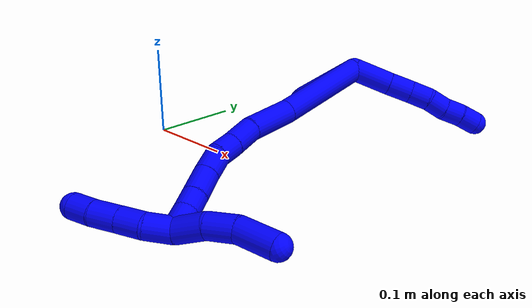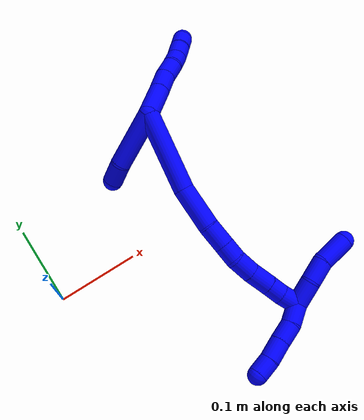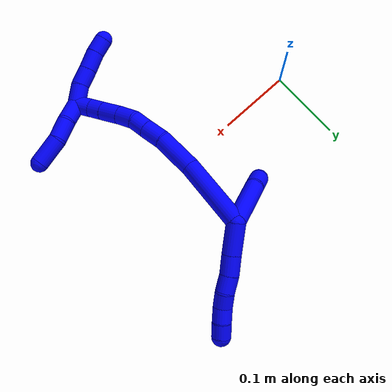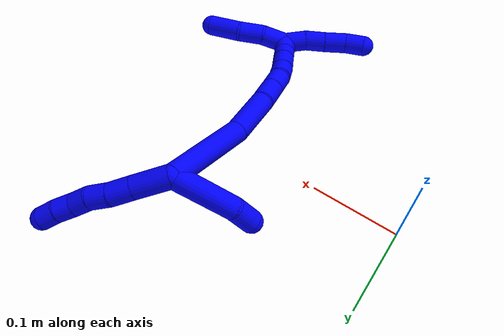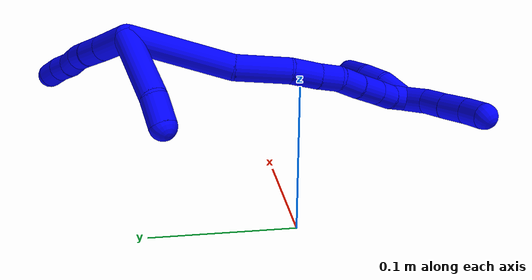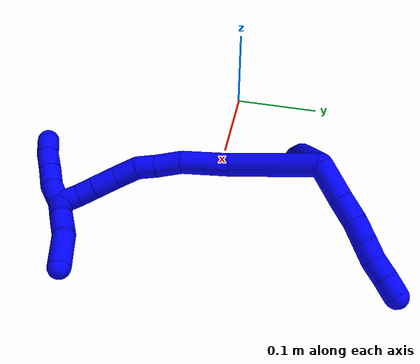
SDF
<sdf version="1.7">
 <world name="default">
  <model name="bin">
   <static>1</static>
   <link name="bottom">
    <collision name="collision-bottom">
     <pose>0 0 -0.01 0 -0 0</pose>
     <geometry><box><size>0.8 0.6 0.02</size></box></geometry>
     <surface>
      <friction><ode><mu>100</mu><mu2>100</mu2></ode></friction>
      <contact><collide_bitmask>65535</collide_bitmask></contact>
     </surface>
    </collision>
   </link>
   <link name="west_wall">
    <collision name="collision-west_wall">
     <pose>-0.41 0 0.1 0 -0 0</pose>
     <geometry><box><size>0.02 0.6 0.2</size></box></geometry>
     <surface>
      <friction><ode><mu>100</mu><mu2>100</mu2></ode></friction>
      <contact><collide_bitmask>65535</collide_bitmask></contact>
     </surface>
    </collision>
   </link>
   <link name="east_wall">
    <collision name="collision-east_wall">
     <pose>0.41 0 0.1 0 -0 0</pose>
     <geometry><box><size>0.02 0.6 0.2</size></box></geometry>
     <surface>
      <friction><ode><mu>100</mu><mu2>100</mu2></ode></friction>
      <contact><collide_bitmask>65535</collide_bitmask></contact>
     </surface>
    </collision>
   </link>
   <link name="south_wall">
    <collision name="collision-south_wall">
     <pose>0 -0.31 0.1 0 -0 0</pose>
     <geometry><box><size>0.8 0.02 0.2</size></box></geometry>
     <surface>
      <friction><ode><mu>100</mu><mu2>100</mu2></ode></friction>
      <contact><collide_bitmask>65535</collide_bitmask></contact>
     </surface>
    </collision>
   </link>
   <link name="north_wall">
    <collision name="collision-north_wall">
     <pose>0 0.31 0.1 0 -0 0</pose>
     <geometry><box><size>0.8 0.02 0.2</size></box></geometry>
     <surface>
      <friction><ode><mu>100</mu><mu2>100</mu2></ode></friction>
      <contact><collide_bitmask>65535</collide_bitmask></contact>
     </surface>
    </collision>
   </link>
  </model>
  <model name="1">
   <static>0</static>
   <link name="1">
    <collision name="collision-cylinder-e_1_2_8">
     <pose>0.013728 0.008758 0.012895 -0.596623 0.722049 -0.231163</pose>
     <geometry><cylinder><radius>0.0125</radius><length>0.041543</length></cylinder></geometry>
     <surface>
      <friction><ode><mu>1.16</mu><mu2>1.16</mu2><slip1>0</slip1><slip2>0</slip2></ode></friction>
      <contact><ode><kp>1e+06</kp><kd>1</kd><max_vel>0</max_vel><min_depth>0.001</min_depth></ode></contact>
     </surface>
    </collision>
    <visual name="visual-cylinder-e_1_2_8">
     <pose>0.013728 0.008758 0.012895 -0.596623 0.722049 -0.231163</pose>
     <geometry><cylinder><radius>0.0125</radius><length>0.041543</length></cylinder></geometry>
     <material><ambient>0 0 1 1</ambient></material>
    </visual>
    <collision name="collision-cylinder-e_2_8_9">
     <pose>0.035744 0.023323 0.033961 -0.617864 0.690821 -0.228682</pose>
     <geometry><cylinder><radius>0.0125</radius><length>0.026012</length></cylinder></geometry>
     <surface>
      <friction><ode><mu>1.16</mu><mu2>1.16</mu2><slip1>0</slip1><slip2>0</slip2></ode></friction>
      <contact><ode><kp>1e+06</kp><kd>1</kd><max_vel>0</max_vel><min_depth>0.001</min_depth></ode></contact>
     </surface>
    </collision>
    <visual name="visual-cylinder-e_2_8_9">
     <pose>0.035744 0.023323 0.033961 -0.617864 0.690821 -0.228682</pose>
     <geometry><cylinder><radius>0.0125</radius><length>0.026012</length></cylinder></geometry>
     <material><ambient>0 0 1 1</ambient></material>
    </visual>
    <collision name="collision-cylinder-e_3_9_10">
     <pose>0.051557 0.03265 0.049611 -0.439895 0.738585 -0.172631</pose>
     <geometry><cylinder><radius>0.0125</radius><length>0.022359</length></cylinder></geometry>
     <surface>
      <friction><ode><mu>1.16</mu><mu2>1.16</mu2><slip1>0</slip1><slip2>0</slip2></ode></friction>
      <contact><ode><kp>1e+06</kp><kd>1</kd><max_vel>0</max_vel><min_depth>0.001</min_depth></ode></contact>
     </surface>
    </collision>
    <visual name="visual-cylinder-e_3_9_10">
     <pose>0.051557 0.03265 0.049611 -0.439895 0.738585 -0.172631</pose>
     <geometry><cylinder><radius>0.0125</radius><length>0.022359</length></cylinder></geometry>
     <material><ambient>0 0 1 1</ambient></material>
    </visual>
    <collision name="collision-cylinder-e_4_10_11">
     <pose>0.066774 0.040418 0.061917 -0.721678 0.874472 -0.349172</pose>
     <geometry><cylinder><radius>0.0125</radius><length>0.020046</length></cylinder></geometry>
     <surface>
      <friction><ode><mu>1.16</mu><mu2>1.16</mu2><slip1>0</slip1><slip2>0</slip2></ode></friction>
      <contact><ode><kp>1e+06</kp><kd>1</kd><max_vel>0</max_vel><min_depth>0.001</min_depth></ode></contact>
     </surface>
    </collision>
    <visual name="visual-cylinder-e_4_10_11">
     <pose>0.066774 0.040418 0.061917 -0.721678 0.874472 -0.349172</pose>
     <geometry><cylinder><radius>0.0125</radius><length>0.020046</length></cylinder></geometry>
     <material><ambient>0 0 1 1</ambient></material>
    </visual>
    <collision name="collision-cylinder-e_5_11_12">
     <pose>0.080775 0.049559 0.072764 -0.682514 0.682811 -0.251057</pose>
     <geometry><cylinder><radius>0.0125</radius><length>0.020005</length></cylinder></geometry>
     <surface>
      <friction><ode><mu>1.16</mu><mu2>1.16</mu2><slip1>0</slip1><slip2>0</slip2></ode></friction>
      <contact><ode><kp>1e+06</kp><kd>1</kd><max_vel>0</max_vel><min_depth>0.001</min_depth></ode></contact>
     </surface>
    </collision>
    <visual name="visual-cylinder-e_5_11_12">
     <pose>0.080775 0.049559 0.072764 -0.682514 0.682811 -0.251057</pose>
     <geometry><cylinder><radius>0.0125</radius><length>0.020005</length></cylinder></geometry>
     <material><ambient>0 0 1 1</ambient></material>
    </visual>
    <collision name="collision-cylinder-e_6_12_6">
     <pose>0.094128 0.059588 0.083726 -0.804596 0.779516 -0.346075</pose>
     <geometry><cylinder><radius>0.0125</radius><length>0.020035</length></cylinder></geometry>
     <surface>
      <friction><ode><mu>1.16</mu><mu2>1.16</mu2><slip1>0</slip1><slip2>0</slip2></ode></friction>
      <contact><ode><kp>1e+06</kp><kd>1</kd><max_vel>0</max_vel><min_depth>0.001</min_depth></ode></contact>
     </surface>
    </collision>
    <visual name="visual-cylinder-e_6_12_6">
     <pose>0.094128 0.059588 0.083726 -0.804596 0.779516 -0.346075</pose>
     <geometry><cylinder><radius>0.0125</radius><length>0.020035</length></cylinder></geometry>
     <material><ambient>0 0 1 1</ambient></material>
    </visual>
    <collision name="collision-cylinder-e_1_2_13">
     <pose>0.003373 0.002211 -0.036047 -3.08033 0.093113 -1.97802</pose>
     <geometry><cylinder><radius>0.0125</radius><length>0.072544</length></cylinder></geometry>
     <surface>
      <friction><ode><mu>1.16</mu><mu2>1.16</mu2><slip1>0</slip1><slip2>0</slip2></ode></friction>
      <contact><ode><kp>1e+06</kp><kd>1</kd><max_vel>0</max_vel><min_depth>0.001</min_depth></ode></contact>
     </surface>
    </collision>
    <visual name="visual-cylinder-e_1_2_13">
     <pose>0.003373 0.002211 -0.036047 -3.08033 0.093113 -1.97802</pose>
     <geometry><cylinder><radius>0.0125</radius><length>0.072544</length></cylinder></geometry>
     <material><ambient>0 0 1 1</ambient></material>
    </visual>
    <collision name="collision-cylinder-e_2_13_5">
     <pose>0.01133 0.005926 -0.084946 -3.02513 0.340565 -2.48782</pose>
     <geometry><cylinder><radius>0.0125</radius><length>0.027456</length></cylinder></geometry>
     <surface>
      <friction><ode><mu>1.16</mu><mu2>1.16</mu2><slip1>0</slip1><slip2>0</slip2></ode></friction>
      <contact><ode><kp>1e+06</kp><kd>1</kd><max_vel>0</max_vel><min_depth>0.001</min_depth></ode></contact>
     </surface>
    </collision>
    <visual name="visual-cylinder-e_2_13_5">
     <pose>0.01133 0.005926 -0.084946 -3.02513 0.340565 -2.48782</pose>
     <geometry><cylinder><radius>0.0125</radius><length>0.027456</length></cylinder></geometry>
     <material><ambient>0 0 1 1</ambient></material>
    </visual>
    <collision name="collision-cylinder-e_1_2_14">
     <pose>0.011297 -0.039592 -0.028262 2.19075 0.228188 0.438043</pose>
     <geometry><cylinder><radius>0.0125</radius><length>0.099877</length></cylinder></geometry>
     <surface>
      <friction><ode><mu>1.16</mu><mu2>1.16</mu2><slip1>0</slip1><slip2>0</slip2></ode></friction>
      <contact><ode><kp>1e+06</kp><kd>1</kd><max_vel>0</max_vel><min_depth>0.001</min_depth></ode></contact>
     </surface>
    </collision>
    <visual name="visual-cylinder-e_1_2_14">
     <pose>0.011297 -0.039592 -0.028262 2.19075 0.228188 0.438043</pose>
     <geometry><cylinder><radius>0.0125</radius><length>0.099877</length></cylinder></geometry>
     <material><ambient>0 0 1 1</ambient></material>
    </visual>
    <collision name="collision-cylinder-e_2_14_15">
     <pose>0.026235 -0.103539 -0.06694 1.97492 0.136614 0.206592</pose>
     <geometry><cylinder><radius>0.0125</radius><length>0.053476</length></cylinder></geometry>
     <surface>
      <friction><ode><mu>1.16</mu><mu2>1.16</mu2><slip1>0</slip1><slip2>0</slip2></ode></friction>
      <contact><ode><kp>1e+06</kp><kd>1</kd><max_vel>0</max_vel><min_depth>0.001</min_depth></ode></contact>
     </surface>
    </collision>
    <visual name="visual-cylinder-e_2_14_15">
     <pose>0.026235 -0.103539 -0.06694 1.97492 0.136614 0.206592</pose>
     <geometry><cylinder><radius>0.0125</radius><length>0.053476</length></cylinder></geometry>
     <material><ambient>0 0 1 1</ambient></material>
    </visual>
    <collision name="collision-cylinder-e_3_15_16">
     <pose>0.034658 -0.140536 -0.082424 1.9521 0.337605 0.493603</pose>
     <geometry><cylinder><radius>0.0125</radius><length>0.028871</length></cylinder></geometry>
     <surface>
      <friction><ode><mu>1.16</mu><mu2>1.16</mu2><slip1>0</slip1><slip2>0</slip2></ode></friction>
      <contact><ode><kp>1e+06</kp><kd>1</kd><max_vel>0</max_vel><min_depth>0.001</min_depth></ode></contact>
     </surface>
    </collision>
    <visual name="visual-cylinder-e_3_15_16">
     <pose>0.034658 -0.140536 -0.082424 1.9521 0.337605 0.493603</pose>
     <geometry><cylinder><radius>0.0125</radius><length>0.028871</length></cylinder></geometry>
     <material><ambient>0 0 1 1</ambient></material>
    </visual>
    <collision name="collision-cylinder-e_4_16_17">
     <pose>0.042314 -0.162908 -0.091111 1.92685 0.270188 0.38626</pose>
     <geometry><cylinder><radius>0.0125</radius><length>0.021541</length></cylinder></geometry>
     <surface>
      <friction><ode><mu>1.16</mu><mu2>1.16</mu2><slip1>0</slip1><slip2>0</slip2></ode></friction>
      <contact><ode><kp>1e+06</kp><kd>1</kd><max_vel>0</max_vel><min_depth>0.001</min_depth></ode></contact>
     </surface>
    </collision>
    <visual name="visual-cylinder-e_4_16_17">
     <pose>0.042314 -0.162908 -0.091111 1.92685 0.270188 0.38626</pose>
     <geometry><cylinder><radius>0.0125</radius><length>0.021541</length></cylinder></geometry>
     <material><ambient>0 0 1 1</ambient></material>
    </visual>
    <collision name="collision-cylinder-e_5_17_18">
     <pose>0.05213 -0.182556 -0.097745 1.86595 0.589925 0.778076</pose>
     <geometry><cylinder><radius>0.0125</radius><length>0.024954</length></cylinder></geometry>
     <surface>
      <friction><ode><mu>1.16</mu><mu2>1.16</mu2><slip1>0</slip1><slip2>0</slip2></ode></friction>
      <contact><ode><kp>1e+06</kp><kd>1</kd><max_vel>0</max_vel><min_depth>0.001</min_depth></ode></contact>
     </surface>
    </collision>
    <visual name="visual-cylinder-e_5_17_18">
     <pose>0.05213 -0.182556 -0.097745 1.86595 0.589925 0.778076</pose>
     <geometry><cylinder><radius>0.0125</radius><length>0.024954</length></cylinder></geometry>
     <material><ambient>0 0 1 1</ambient></material>
    </visual>
    <collision name="collision-cylinder-e_6_18_19">
     <pose>0.066859 -0.203681 -0.102839 1.75418 0.599526 0.711699</pose>
     <geometry><cylinder><radius>0.0125</radius><length>0.027607</length></cylinder></geometry>
     <surface>
      <friction><ode><mu>1.16</mu><mu2>1.16</mu2><slip1>0</slip1><slip2>0</slip2></ode></friction>
      <contact><ode><kp>1e+06</kp><kd>1</kd><max_vel>0</max_vel><min_depth>0.001</min_depth></ode></contact>
     </surface>
    </collision>
    <visual name="visual-cylinder-e_6_18_19">
     <pose>0.066859 -0.203681 -0.102839 1.75418 0.599526 0.711699</pose>
     <geometry><cylinder><radius>0.0125</radius><length>0.027607</length></cylinder></geometry>
     <material><ambient>0 0 1 1</ambient></material>
    </visual>
    <collision name="collision-cylinder-e_7_19_20">
     <pose>0.080375 -0.222984 -0.10665 1.78162 0.605057 0.736706</pose>
     <geometry><cylinder><radius>0.0125</radius><length>0.020136</length></cylinder></geometry>
     <surface>
      <friction><ode><mu>1.16</mu><mu2>1.16</mu2><slip1>0</slip1><slip2>0</slip2></ode></friction>
      <contact><ode><kp>1e+06</kp><kd>1</kd><max_vel>0</max_vel><min_depth>0.001</min_depth></ode></contact>
     </surface>
    </collision>
    <visual name="visual-cylinder-e_7_19_20">
     <pose>0.080375 -0.222984 -0.10665 1.78162 0.605057 0.736706</pose>
     <geometry><cylinder><radius>0.0125</radius><length>0.020136</length></cylinder></geometry>
     <material><ambient>0 0 1 1</ambient></material>
    </visual>
    <collision name="collision-cylinder-e_8_20_1">
     <pose>0.091926 -0.241286 -0.109046 1.63562 0.517683 0.550703</pose>
     <geometry><cylinder><radius>0.0125</radius><length>0.023537</length></cylinder></geometry>
     <surface>
      <friction><ode><mu>1.16</mu><mu2>1.16</mu2><slip1>0</slip1><slip2>0</slip2></ode></friction>
      <contact><ode><kp>1e+06</kp><kd>1</kd><max_vel>0</max_vel><min_depth>0.001</min_depth></ode></contact>
     </surface>
    </collision>
    <visual name="visual-cylinder-e_8_20_1">
     <pose>0.091926 -0.241286 -0.109046 1.63562 0.517683 0.550703</pose>
     <geometry><cylinder><radius>0.0125</radius><length>0.023537</length></cylinder></geometry>
     <material><ambient>0 0 1 1</ambient></material>
    </visual>
    <collision name="collision-cylinder-e_1_1_21">
     <pose>0.091453 -0.256403 -0.120633 2.71902 -0.483973 -1.71075</pose>
     <geometry><cylinder><radius>0.0125</radius><length>0.027065</length></cylinder></geometry>
     <surface>
      <friction><ode><mu>1.16</mu><mu2>1.16</mu2><slip1>0</slip1><slip2>0</slip2></ode></friction>
      <contact><ode><kp>1e+06</kp><kd>1</kd><max_vel>0</max_vel><min_depth>0.001</min_depth></ode></contact>
     </surface>
    </collision>
    <visual name="visual-cylinder-e_1_1_21">
     <pose>0.091453 -0.256403 -0.120633 2.71902 -0.483973 -1.71075</pose>
     <geometry><cylinder><radius>0.0125</radius><length>0.027065</length></cylinder></geometry>
     <material><ambient>0 0 1 1</ambient></material>
    </visual>
    <collision name="collision-cylinder-e_2_21_22">
     <pose>0.078914 -0.262734 -0.14201 3.00671 -0.534367 -2.65774</pose>
     <geometry><cylinder><radius>0.0125</radius><length>0.024514</length></cylinder></geometry>
     <surface>
      <friction><ode><mu>1.16</mu><mu2>1.16</mu2><slip1>0</slip1><slip2>0</slip2></ode></friction>
      <contact><ode><kp>1e+06</kp><kd>1</kd><max_vel>0</max_vel><min_depth>0.001</min_depth></ode></contact>
     </surface>
    </collision>
    <visual name="visual-cylinder-e_2_21_22">
     <pose>0.078914 -0.262734 -0.14201 3.00671 -0.534367 -2.65774</pose>
     <geometry><cylinder><radius>0.0125</radius><length>0.024514</length></cylinder></geometry>
     <material><ambient>0 0 1 1</ambient></material>
    </visual>
    <collision name="collision-cylinder-e_3_22_23">
     <pose>0.065945 -0.266202 -0.16356 2.95902 -0.537534 -2.49986</pose>
     <geometry><cylinder><radius>0.0125</radius><length>0.026275</length></cylinder></geometry>
     <surface>
      <friction><ode><mu>1.16</mu><mu2>1.16</mu2><slip1>0</slip1><slip2>0</slip2></ode></friction>
      <contact><ode><kp>1e+06</kp><kd>1</kd><max_vel>0</max_vel><min_depth>0.001</min_depth></ode></contact>
     </surface>
    </collision>
    <visual name="visual-cylinder-e_3_22_23">
     <pose>0.065945 -0.266202 -0.16356 2.95902 -0.537534 -2.49986</pose>
     <geometry><cylinder><radius>0.0125</radius><length>0.026275</length></cylinder></geometry>
     <material><ambient>0 0 1 1</ambient></material>
    </visual>
    <collision name="collision-cylinder-e_4_23_4">
     <pose>0.053225 -0.268399 -0.183967 3.12567 -0.57191 -3.08744</pose>
     <geometry><cylinder><radius>0.0125</radius><length>0.022146</length></cylinder></geometry>
     <surface>
      <friction><ode><mu>1.16</mu><mu2>1.16</mu2><slip1>0</slip1><slip2>0</slip2></ode></friction>
      <contact><ode><kp>1e+06</kp><kd>1</kd><max_vel>0</max_vel><min_depth>0.001</min_depth></ode></contact>
     </surface>
    </collision>
    <visual name="visual-cylinder-e_4_23_4">
     <pose>0.053225 -0.268399 -0.183967 3.12567 -0.57191 -3.08744</pose>
     <geometry><cylinder><radius>0.0125</radius><length>0.022146</length></cylinder></geometry>
     <material><ambient>0 0 1 1</ambient></material>
    </visual>
    <collision name="collision-cylinder-e_1_1_24">
     <pose>0.100212 -0.250635 -0.094115 -0.054848 0.156387 -0.004299</pose>
     <geometry><cylinder><radius>0.0125</radius><length>0.03162</length></cylinder></geometry>
     <surface>
      <friction><ode><mu>1.16</mu><mu2>1.16</mu2><slip1>0</slip1><slip2>0</slip2></ode></friction>
      <contact><ode><kp>1e+06</kp><kd>1</kd><max_vel>0</max_vel><min_depth>0.001</min_depth></ode></contact>
     </surface>
    </collision>
    <visual name="visual-cylinder-e_1_1_24">
     <pose>0.100212 -0.250635 -0.094115 -0.054848 0.156387 -0.004299</pose>
     <geometry><cylinder><radius>0.0125</radius><length>0.03162</length></cylinder></geometry>
     <material><ambient>0 0 1 1</ambient></material>
    </visual>
    <collision name="collision-cylinder-e_2_24_25">
     <pose>0.108447 -0.248068 -0.065423 -0.129921 0.412006 -0.027186</pose>
     <geometry><cylinder><radius>0.0125</radius><length>0.028831</length></cylinder></geometry>
     <surface>
      <friction><ode><mu>1.16</mu><mu2>1.16</mu2><slip1>0</slip1><slip2>0</slip2></ode></friction>
      <contact><ode><kp>1e+06</kp><kd>1</kd><max_vel>0</max_vel><min_depth>0.001</min_depth></ode></contact>
     </surface>
    </collision>
    <visual name="visual-cylinder-e_2_24_25">
     <pose>0.108447 -0.248068 -0.065423 -0.129921 0.412006 -0.027186</pose>
     <geometry><cylinder><radius>0.0125</radius><length>0.028831</length></cylinder></geometry>
     <material><ambient>0 0 1 1</ambient></material>
    </visual>
    <collision name="collision-cylinder-e_3_25_3">
     <pose>0.125781 -0.247923 -0.03636 0.097821 0.624482 0.031599</pose>
     <geometry><cylinder><radius>0.0125</radius><length>0.039549</length></cylinder></geometry>
     <surface>
      <friction><ode><mu>1.16</mu><mu2>1.16</mu2><slip1>0</slip1><slip2>0</slip2></ode></friction>
      <contact><ode><kp>1e+06</kp><kd>1</kd><max_vel>0</max_vel><min_depth>0.001</min_depth></ode></contact>
     </surface>
    </collision>
    <visual name="visual-cylinder-e_3_25_3">
     <pose>0.125781 -0.247923 -0.03636 0.097821 0.624482 0.031599</pose>
     <geometry><cylinder><radius>0.0125</radius><length>0.039549</length></cylinder></geometry>
     <material><ambient>0 0 1 1</ambient></material>
    </visual>
    <collision name="collision-sphere-3">
     <pose>0.137343 -0.24949 -0.020394 0 -0 0</pose>
     <geometry><sphere><radius>0.0125</radius></sphere></geometry>
     <surface>
      <friction><ode><mu>1.16</mu><mu2>1.16</mu2><slip1>0</slip1><slip2>0</slip2></ode></friction>
      <contact><ode><kp>1e+06</kp><kd>1</kd><max_vel>0</max_vel><min_depth>0.001</min_depth></ode></contact>
     </surface>
    </collision>
    <visual name="visual-sphere-3">
     <pose>0.137343 -0.24949 -0.020394 0 -0 0</pose>
     <geometry><sphere><radius>0.0125</radius></sphere></geometry>
     <material><ambient>0 0 1 1</ambient></material>
    </visual>
    <collision name="collision-sphere-25">
     <pose>0.11422 -0.246356 -0.052325 0 -0 0</pose>
     <geometry><sphere><radius>0.0125</radius></sphere></geometry>
     <surface>
      <friction><ode><mu>1.16</mu><mu2>1.16</mu2><slip1>0</slip1><slip2>0</slip2></ode></friction>
      <contact><ode><kp>1e+06</kp><kd>1</kd><max_vel>0</max_vel><min_depth>0.001</min_depth></ode></contact>
     </surface>
    </collision>
    <visual name="visual-sphere-25">
     <pose>0.11422 -0.246356 -0.052325 0 -0 0</pose>
     <geometry><sphere><radius>0.0125</radius></sphere></geometry>
     <material><ambient>0 0 1 1</ambient></material>
    </visual>
    <collision name="collision-sphere-24">
     <pose>0.102674 -0.249779 -0.078521 0 -0 0</pose>
     <geometry><sphere><radius>0.0125</radius></sphere></geometry>
     <surface>
      <friction><ode><mu>1.16</mu><mu2>1.16</mu2><slip1>0</slip1><slip2>0</slip2></ode></friction>
      <contact><ode><kp>1e+06</kp><kd>1</kd><max_vel>0</max_vel><min_depth>0.001</min_depth></ode></contact>
     </surface>
    </collision>
    <visual name="visual-sphere-24">
     <pose>0.102674 -0.249779 -0.078521 0 -0 0</pose>
     <geometry><sphere><radius>0.0125</radius></sphere></geometry>
     <material><ambient>0 0 1 1</ambient></material>
    </visual>
    <collision name="collision-sphere-4">
     <pose>0.047232 -0.268547 -0.193277 0 -0 0</pose>
     <geometry><sphere><radius>0.0125</radius></sphere></geometry>
     <surface>
      <friction><ode><mu>1.16</mu><mu2>1.16</mu2><slip1>0</slip1><slip2>0</slip2></ode></friction>
      <contact><ode><kp>1e+06</kp><kd>1</kd><max_vel>0</max_vel><min_depth>0.001</min_depth></ode></contact>
     </surface>
    </collision>
    <visual name="visual-sphere-4">
     <pose>0.047232 -0.268547 -0.193277 0 -0 0</pose>
     <geometry><sphere><radius>0.0125</radius></sphere></geometry>
     <material><ambient>0 0 1 1</ambient></material>
    </visual>
    <collision name="collision-sphere-23">
     <pose>0.059218 -0.26825 -0.174657 0 -0 0</pose>
     <geometry><sphere><radius>0.0125</radius></sphere></geometry>
     <surface>
      <friction><ode><mu>1.16</mu><mu2>1.16</mu2><slip1>0</slip1><slip2>0</slip2></ode></friction>
      <contact><ode><kp>1e+06</kp><kd>1</kd><max_vel>0</max_vel><min_depth>0.001</min_depth></ode></contact>
     </surface>
    </collision>
    <visual name="visual-sphere-23">
     <pose>0.059218 -0.26825 -0.174657 0 -0 0</pose>
     <geometry><sphere><radius>0.0125</radius></sphere></geometry>
     <material><ambient>0 0 1 1</ambient></material>
    </visual>
    <collision name="collision-sphere-22">
     <pose>0.072671 -0.264153 -0.152462 0 -0 0</pose>
     <geometry><sphere><radius>0.0125</radius></sphere></geometry>
     <surface>
      <friction><ode><mu>1.16</mu><mu2>1.16</mu2><slip1>0</slip1><slip2>0</slip2></ode></friction>
      <contact><ode><kp>1e+06</kp><kd>1</kd><max_vel>0</max_vel><min_depth>0.001</min_depth></ode></contact>
     </surface>
    </collision>
    <visual name="visual-sphere-22">
     <pose>0.072671 -0.264153 -0.152462 0 -0 0</pose>
     <geometry><sphere><radius>0.0125</radius></sphere></geometry>
     <material><ambient>0 0 1 1</ambient></material>
    </visual>
    <collision name="collision-sphere-21">
     <pose>0.085156 -0.261316 -0.131558 0 -0 0</pose>
     <geometry><sphere><radius>0.0125</radius></sphere></geometry>
     <surface>
      <friction><ode><mu>1.16</mu><mu2>1.16</mu2><slip1>0</slip1><slip2>0</slip2></ode></friction>
      <contact><ode><kp>1e+06</kp><kd>1</kd><max_vel>0</max_vel><min_depth>0.001</min_depth></ode></contact>
     </surface>
    </collision>
    <visual name="visual-sphere-21">
     <pose>0.085156 -0.261316 -0.131558 0 -0 0</pose>
     <geometry><sphere><radius>0.0125</radius></sphere></geometry>
     <material><ambient>0 0 1 1</ambient></material>
    </visual>
    <collision name="collision-sphere-1">
     <pose>0.09775 -0.251491 -0.109708 0 -0 0</pose>
     <geometry><sphere><radius>0.0125</radius></sphere></geometry>
     <surface>
      <friction><ode><mu>1.16</mu><mu2>1.16</mu2><slip1>0</slip1><slip2>0</slip2></ode></friction>
      <contact><ode><kp>1e+06</kp><kd>1</kd><max_vel>0</max_vel><min_depth>0.001</min_depth></ode></contact>
     </surface>
    </collision>
    <visual name="visual-sphere-1">
     <pose>0.09775 -0.251491 -0.109708 0 -0 0</pose>
     <geometry><sphere><radius>0.0125</radius></sphere></geometry>
     <material><ambient>0 0 1 1</ambient></material>
    </visual>
    <collision name="collision-sphere-12">
     <pose>0.087086 0.054454 0.078786 0 -0 0</pose>
     <geometry><sphere><radius>0.0125</radius></sphere></geometry>
     <surface>
      <friction><ode><mu>1.16</mu><mu2>1.16</mu2><slip1>0</slip1><slip2>0</slip2></ode></friction>
      <contact><ode><kp>1e+06</kp><kd>1</kd><max_vel>0</max_vel><min_depth>0.001</min_depth></ode></contact>
     </surface>
    </collision>
    <visual name="visual-sphere-12">
     <pose>0.087086 0.054454 0.078786 0 -0 0</pose>
     <geometry><sphere><radius>0.0125</radius></sphere></geometry>
     <material><ambient>0 0 1 1</ambient></material>
    </visual>
    <collision name="collision-sphere-11">
     <pose>0.074463 0.044665 0.066743 0 -0 0</pose>
     <geometry><sphere><radius>0.0125</radius></sphere></geometry>
     <surface>
      <friction><ode><mu>1.16</mu><mu2>1.16</mu2><slip1>0</slip1><slip2>0</slip2></ode></friction>
      <contact><ode><kp>1e+06</kp><kd>1</kd><max_vel>0</max_vel><min_depth>0.001</min_depth></ode></contact>
     </surface>
    </collision>
    <visual name="visual-sphere-11">
     <pose>0.074463 0.044665 0.066743 0 -0 0</pose>
     <geometry><sphere><radius>0.0125</radius></sphere></geometry>
     <material><ambient>0 0 1 1</ambient></material>
    </visual>
    <collision name="collision-sphere-10">
     <pose>0.059084 0.036171 0.057091 0 -0 0</pose>
     <geometry><sphere><radius>0.0125</radius></sphere></geometry>
     <surface>
      <friction><ode><mu>1.16</mu><mu2>1.16</mu2><slip1>0</slip1><slip2>0</slip2></ode></friction>
      <contact><ode><kp>1e+06</kp><kd>1</kd><max_vel>0</max_vel><min_depth>0.001</min_depth></ode></contact>
     </surface>
    </collision>
    <visual name="visual-sphere-10">
     <pose>0.059084 0.036171 0.057091 0 -0 0</pose>
     <geometry><sphere><radius>0.0125</radius></sphere></geometry>
     <material><ambient>0 0 1 1</ambient></material>
    </visual>
    <collision name="collision-sphere-9">
     <pose>0.044031 0.02913 0.042132 0 -0 0</pose>
     <geometry><sphere><radius>0.0125</radius></sphere></geometry>
     <surface>
      <friction><ode><mu>1.16</mu><mu2>1.16</mu2><slip1>0</slip1><slip2>0</slip2></ode></friction>
      <contact><ode><kp>1e+06</kp><kd>1</kd><max_vel>0</max_vel><min_depth>0.001</min_depth></ode></contact>
     </surface>
    </collision>
    <visual name="visual-sphere-9">
     <pose>0.044031 0.02913 0.042132 0 -0 0</pose>
     <geometry><sphere><radius>0.0125</radius></sphere></geometry>
     <material><ambient>0 0 1 1</ambient></material>
    </visual>
    <collision name="collision-sphere-2">
     <geometry><sphere><radius>0.0125</radius></sphere></geometry>
     <surface>
      <friction><ode><mu>1.16</mu><mu2>1.16</mu2><slip1>0</slip1><slip2>0</slip2></ode></friction>
      <contact><ode><kp>1e+06</kp><kd>1</kd><max_vel>0</max_vel><min_depth>0.001</min_depth></ode></contact>
     </surface>
    </collision>
    <visual name="visual-sphere-2">
     <geometry><sphere><radius>0.0125</radius></sphere></geometry>
     <material><ambient>0 0 1 1</ambient></material>
    </visual>
    <collision name="collision-sphere-19">
     <pose>0.074648 -0.214886 -0.104918 0 -0 0</pose>
     <geometry><sphere><radius>0.0125</radius></sphere></geometry>
     <surface>
      <friction><ode><mu>1.16</mu><mu2>1.16</mu2><slip1>0</slip1><slip2>0</slip2></ode></friction>
      <contact><ode><kp>1e+06</kp><kd>1</kd><max_vel>0</max_vel><min_depth>0.001</min_depth></ode></contact>
     </surface>
    </collision>
    <visual name="visual-sphere-19">
     <pose>0.074648 -0.214886 -0.104918 0 -0 0</pose>
     <geometry><sphere><radius>0.0125</radius></sphere></geometry>
     <material><ambient>0 0 1 1</ambient></material>
    </visual>
    <collision name="collision-sphere-8">
     <pose>0.027457 0.017516 0.02579 0 -0 0</pose>
     <geometry><sphere><radius>0.0125</radius></sphere></geometry>
     <surface>
      <friction><ode><mu>1.16</mu><mu2>1.16</mu2><slip1>0</slip1><slip2>0</slip2></ode></friction>
      <contact><ode><kp>1e+06</kp><kd>1</kd><max_vel>0</max_vel><min_depth>0.001</min_depth></ode></contact>
     </surface>
    </collision>
    <visual name="visual-sphere-8">
     <pose>0.027457 0.017516 0.02579 0 -0 0</pose>
     <geometry><sphere><radius>0.0125</radius></sphere></geometry>
     <material><ambient>0 0 1 1</ambient></material>
    </visual>
    <collision name="collision-sphere-6">
     <pose>0.101169 0.064722 0.088667 0 -0 0</pose>
     <geometry><sphere><radius>0.0125</radius></sphere></geometry>
     <surface>
      <friction><ode><mu>1.16</mu><mu2>1.16</mu2><slip1>0</slip1><slip2>0</slip2></ode></friction>
      <contact><ode><kp>1e+06</kp><kd>1</kd><max_vel>0</max_vel><min_depth>0.001</min_depth></ode></contact>
     </surface>
    </collision>
    <visual name="visual-sphere-6">
     <pose>0.101169 0.064722 0.088667 0 -0 0</pose>
     <geometry><sphere><radius>0.0125</radius></sphere></geometry>
     <material><ambient>0 0 1 1</ambient></material>
    </visual>
    <collision name="collision-sphere-13">
     <pose>0.006745 0.004423 -0.072094 0 -0 0</pose>
     <geometry><sphere><radius>0.0125</radius></sphere></geometry>
     <surface>
      <friction><ode><mu>1.16</mu><mu2>1.16</mu2><slip1>0</slip1><slip2>0</slip2></ode></friction>
      <contact><ode><kp>1e+06</kp><kd>1</kd><max_vel>0</max_vel><min_depth>0.001</min_depth></ode></contact>
     </surface>
    </collision>
    <visual name="visual-sphere-13">
     <pose>0.006745 0.004423 -0.072094 0 -0 0</pose>
     <geometry><sphere><radius>0.0125</radius></sphere></geometry>
     <material><ambient>0 0 1 1</ambient></material>
    </visual>
    <collision name="collision-sphere-5">
     <pose>0.015916 0.00743 -0.097798 0 -0 0</pose>
     <geometry><sphere><radius>0.0125</radius></sphere></geometry>
     <surface>
      <friction><ode><mu>1.16</mu><mu2>1.16</mu2><slip1>0</slip1><slip2>0</slip2></ode></friction>
      <contact><ode><kp>1e+06</kp><kd>1</kd><max_vel>0</max_vel><min_depth>0.001</min_depth></ode></contact>
     </surface>
    </collision>
    <visual name="visual-sphere-5">
     <pose>0.015916 0.00743 -0.097798 0 -0 0</pose>
     <geometry><sphere><radius>0.0125</radius></sphere></geometry>
     <material><ambient>0 0 1 1</ambient></material>
    </visual>
    <collision name="collision-sphere-14">
     <pose>0.022594 -0.079184 -0.056524 0 -0 0</pose>
     <geometry><sphere><radius>0.0125</radius></sphere></geometry>
     <surface>
      <friction><ode><mu>1.16</mu><mu2>1.16</mu2><slip1>0</slip1><slip2>0</slip2></ode></friction>
      <contact><ode><kp>1e+06</kp><kd>1</kd><max_vel>0</max_vel><min_depth>0.001</min_depth></ode></contact>
     </surface>
    </collision>
    <visual name="visual-sphere-14">
     <pose>0.022594 -0.079184 -0.056524 0 -0 0</pose>
     <geometry><sphere><radius>0.0125</radius></sphere></geometry>
     <material><ambient>0 0 1 1</ambient></material>
    </visual>
    <collision name="collision-sphere-15">
     <pose>0.029877 -0.127894 -0.077356 0 -0 0</pose>
     <geometry><sphere><radius>0.0125</radius></sphere></geometry>
     <surface>
      <friction><ode><mu>1.16</mu><mu2>1.16</mu2><slip1>0</slip1><slip2>0</slip2></ode></friction>
      <contact><ode><kp>1e+06</kp><kd>1</kd><max_vel>0</max_vel><min_depth>0.001</min_depth></ode></contact>
     </surface>
    </collision>
    <visual name="visual-sphere-15">
     <pose>0.029877 -0.127894 -0.077356 0 -0 0</pose>
     <geometry><sphere><radius>0.0125</radius></sphere></geometry>
     <material><ambient>0 0 1 1</ambient></material>
    </visual>
    <collision name="collision-sphere-16">
     <pose>0.039439 -0.153179 -0.087493 0 -0 0</pose>
     <geometry><sphere><radius>0.0125</radius></sphere></geometry>
     <surface>
      <friction><ode><mu>1.16</mu><mu2>1.16</mu2><slip1>0</slip1><slip2>0</slip2></ode></friction>
      <contact><ode><kp>1e+06</kp><kd>1</kd><max_vel>0</max_vel><min_depth>0.001</min_depth></ode></contact>
     </surface>
    </collision>
    <visual name="visual-sphere-16">
     <pose>0.039439 -0.153179 -0.087493 0 -0 0</pose>
     <geometry><sphere><radius>0.0125</radius></sphere></geometry>
     <material><ambient>0 0 1 1</ambient></material>
    </visual>
    <collision name="collision-sphere-17">
     <pose>0.045189 -0.172636 -0.094729 0 -0 0</pose>
     <geometry><sphere><radius>0.0125</radius></sphere></geometry>
     <surface>
      <friction><ode><mu>1.16</mu><mu2>1.16</mu2><slip1>0</slip1><slip2>0</slip2></ode></friction>
      <contact><ode><kp>1e+06</kp><kd>1</kd><max_vel>0</max_vel><min_depth>0.001</min_depth></ode></contact>
     </surface>
    </collision>
    <visual name="visual-sphere-17">
     <pose>0.045189 -0.172636 -0.094729 0 -0 0</pose>
     <geometry><sphere><radius>0.0125</radius></sphere></geometry>
     <material><ambient>0 0 1 1</ambient></material>
    </visual>
    <collision name="collision-sphere-18">
     <pose>0.059071 -0.192476 -0.100761 0 -0 0</pose>
     <geometry><sphere><radius>0.0125</radius></sphere></geometry>
     <surface>
      <friction><ode><mu>1.16</mu><mu2>1.16</mu2><slip1>0</slip1><slip2>0</slip2></ode></friction>
      <contact><ode><kp>1e+06</kp><kd>1</kd><max_vel>0</max_vel><min_depth>0.001</min_depth></ode></contact>
     </surface>
    </collision>
    <visual name="visual-sphere-18">
     <pose>0.059071 -0.192476 -0.100761 0 -0 0</pose>
     <geometry><sphere><radius>0.0125</radius></sphere></geometry>
     <material><ambient>0 0 1 1</ambient></material>
    </visual>
    <collision name="collision-sphere-20">
     <pose>0.086102 -0.231081 -0.108383 0 -0 0</pose>
     <geometry><sphere><radius>0.0125</radius></sphere></geometry>
     <surface>
      <friction><ode><mu>1.16</mu><mu2>1.16</mu2><slip1>0</slip1><slip2>0</slip2></ode></friction>
      <contact><ode><kp>1e+06</kp><kd>1</kd><max_vel>0</max_vel><min_depth>0.001</min_depth></ode></contact>
     </surface>
    </collision>
    <visual name="visual-sphere-20">
     <pose>0.086102 -0.231081 -0.108383 0 -0 0</pose>
     <geometry><sphere><radius>0.0125</radius></sphere></geometry>
     <material><ambient>0 0 1 1</ambient></material>
    </visual>
    <inertial>
     <pose>0.050683 -0.11145 -0.0536 0 -0 0</pose>
     <mass>0.75</mass>
     <inertia><ixx>0.000124</ixx><ixy>0</ixy><ixz>0</ixz><iyy>-3e-06</iyy><iyz>0</iyz><izz>3.3e-05</izz></inertia>
    </inertial>
   </link>
   <pose>0.201178 0.117452 0.092052 -0.440688 1.03639 -0.07889</pose>
  </model>
 </world>
</sdf>
